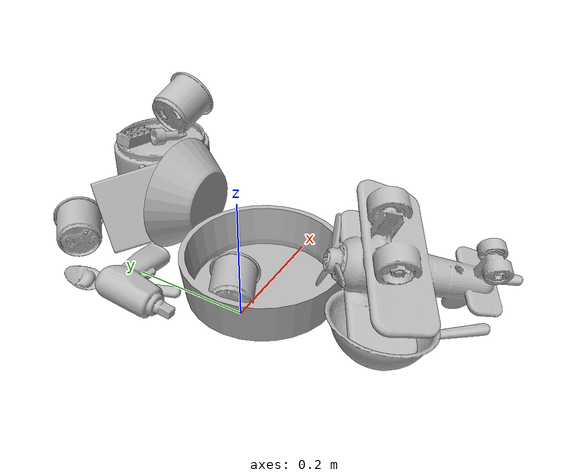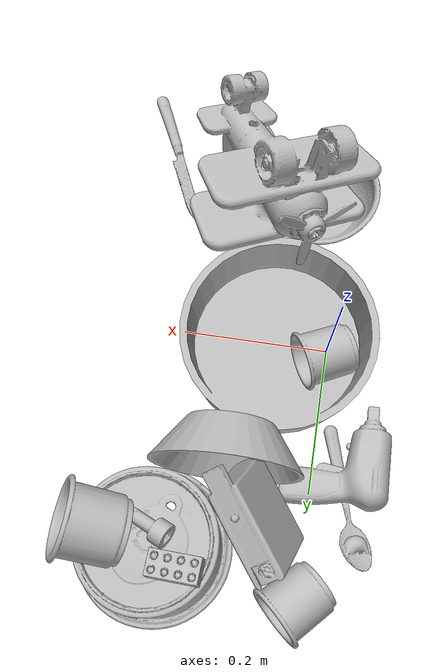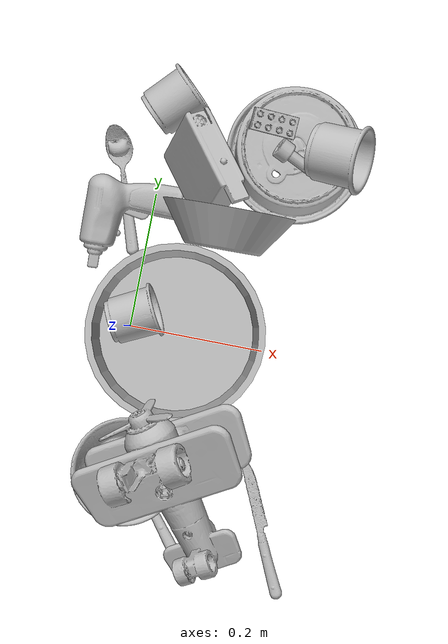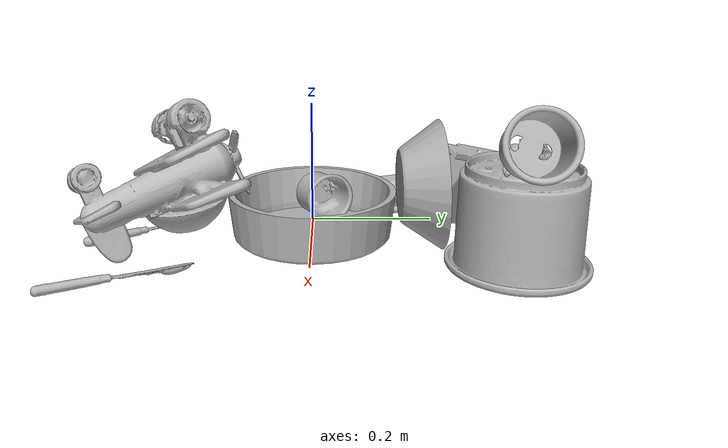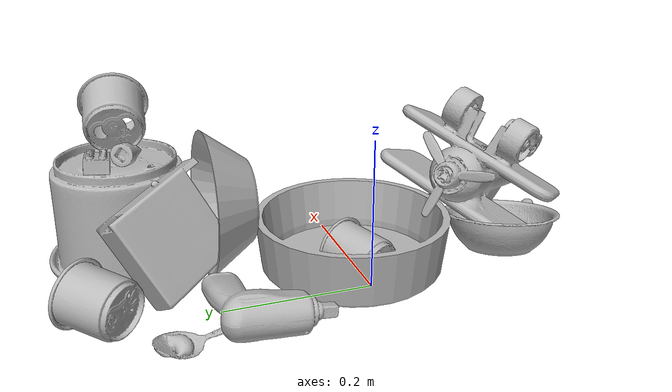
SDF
<sdf version="1.4">
  <world name="default">
    <light name="light1" type="point">
      <pose>0 0 1 0 0 0</pose>
      <diffuse>3 3 3 1</diffuse>
      <specular>3 3 3 1</specular>
    </light>
    <light name="light2" type="point">
      <pose>0 0.5 2 0 0 0</pose>
      <diffuse>1 1 1 1</diffuse>
      <specular>1 1 1 1</specular>
    </light>
    <light name="light3" type="point">
      <pose>0 0.5 2 0 0 0</pose>
      <diffuse>3 3 3 1</diffuse>
      <specular>3 3 3 1</specular>
    </light>
    <scene>
      <ambient>0.7 0.7 0.7</ambient>
    </scene>
    <model name="plate1">
      <link name="link_plate1">
        <collision name="default">
          <geometry>
            <mesh>
              <uri>model://pan_tefal/collision_meshes/collision.obj</uri>
              <scale>1.0 1.0 1.0</scale>
            </mesh>
          </geometry>
          <surface>
            <friction>
              <ode>
                <mu>0.5</mu>
                <mu2>0.5</mu2>
              </ode>
            </friction>
          <contact>
        <ode>
            <max_vel>0</max_vel>
            <min_depth>0.0001</min_depth>
            <kp>1e8</kp>
        </ode>
    </contact></surface>
        </collision>
        <visual name="default">
          <geometry>
            <mesh>
              <uri>model://pan_tefal/visual_meshes/visual.dae</uri>
              <scale>1.0 1.0 1.0</scale>
            </mesh>
          </geometry>
        </visual>
        <inertial>
          <mass>1.2414644956588745</mass>
          <pose>-0.0001800298341549933 3.278589065303095e-05 -0.00851493515074253 0.0008190165640447202 -0.0003301348973125405 -0.33185319573483557</pose>
          <inertia>
            <ixx>0.00856977</ixx>
            <iyy>0.008625018</iyy>
            <izz>0.015775295</izz>
            <ixy>0</ixy>
            <ixz>0</ixz>
            <iyz>0</iyz>
          </inertia>
        </inertial>
      </link>
      <pose>0.0693698301911354 0.0011456385254859924 0.03805014491081238 -5.593968697668288e-06 -3.5262727274742333e-06 1.5217507458046649</pose>
    </model>
    <model name="cup1">
      <link name="link_cup1">
        <collision name="default">
          <geometry>
            <mesh>
              <uri>model://j_cups/collision_meshes/collision.obj</uri>
              <scale>2.0 2.0 2.0</scale>
            </mesh>
          </geometry>
          <surface>
            <friction>
              <ode>
                <mu>0.5</mu>
                <mu2>0.5</mu2>
              </ode>
            </friction>
          <contact>
        <ode>
            <max_vel>0</max_vel>
            <min_depth>0.0001</min_depth>
            <kp>1e8</kp>
        </ode>
    </contact></surface>
        </collision>
        <visual name="default">
          <geometry>
            <mesh>
              <uri>model://j_cups/visual_meshes/visual.dae</uri>
              <scale>2.0 2.0 2.0</scale>
            </mesh>
          </geometry>
        </visual>
        <inertial>
          <mass>0.42814481258392334</mass>
          <pose>0.0012329709716141224 0.0010797895956784487 -0.002695801667869091 0.030303634199985552 0.037580068488308346 0.43868666904956827</pose>
          <inertia>
            <ixx>0.0025146077</ixx>
            <iyy>0.0025407567</iyy>
            <izz>0.0028988216</izz>
            <ixy>0</ixy>
            <ixz>0</ixz>
            <iyz>0</iyz>
          </inertia>
        </inertial>
      </link>
      <pose>0.19186097383499146 0.2963273227214813 0.07599596679210663 -3.1398425942183548 0.006361711697991608 -2.6875063105709143</pose>
    </model>
    <model name="silverware1">
      <link name="link_silverware1">
        <collision name="default">
          <geometry>
            <mesh>
              <uri>model://fork/collision_meshes/collision.obj</uri>
              <scale>1.0 1.0 1.0</scale>
            </mesh>
          </geometry>
          <surface>
            <friction>
              <ode>
                <mu>0.5</mu>
                <mu2>0.5</mu2>
              </ode>
            </friction>
          <contact>
        <ode>
            <max_vel>0</max_vel>
            <min_depth>0.0001</min_depth>
            <kp>1e8</kp>
        </ode>
    </contact></surface>
        </collision>
        <visual name="default">
          <geometry>
            <mesh>
              <uri>model://fork/visual_meshes/visual.dae</uri>
              <scale>1.0 1.0 1.0</scale>
            </mesh>
          </geometry>
        </visual>
        <inertial>
          <mass>0.013809523545205593</mass>
          <pose>-0.029570044949650764 0.0004658822435885668 0.00032188615296036005 -0.013551743215227608 -0.010977837587661193 0.014453899243146438</pose>
          <inertia>
            <ixx>4.84102e-07</ixx>
            <iyy>3.6052697e-05</iyy>
            <izz>3.6269223e-05</izz>
            <ixy>0</ixy>
            <ixz>0</ixz>
            <iyz>0</iyz>
          </inertia>
        </inertial>
      </link>
      <pose>0.08487081527709961 -0.26270145177841187 0.012750478461384773 -3.0750127442482578 0.016400949609195015 2.233572908003052</pose>
    </model>
    <model name="silverware2">
      <link name="link_silverware2">
        <collision name="default">
          <geometry>
            <mesh>
              <uri>model://knife/collision_meshes/collision.obj</uri>
              <scale>1.0 1.0 1.0</scale>
            </mesh>
          </geometry>
          <surface>
            <friction>
              <ode>
                <mu>0.5</mu>
                <mu2>0.5</mu2>
              </ode>
            </friction>
          <contact>
        <ode>
            <max_vel>0</max_vel>
            <min_depth>0.0001</min_depth>
            <kp>1e8</kp>
        </ode>
    </contact></surface>
        </collision>
        <visual name="default">
          <geometry>
            <mesh>
              <uri>model://knife/visual_meshes/visual.dae</uri>
              <scale>1.0 1.0 1.0</scale>
            </mesh>
          </geometry>
        </visual>
        <inertial>
          <mass>0.021972408518195152</mass>
          <pose>-0.023785250261425972 0.0015275123296305537 5.0620161346159875e-05 0.07305788583029697 0.01724841890740089 -0.007409824444555058</pose>
          <inertia>
            <ixx>6.2366604e-07</ixx>
            <iyy>8.441444e-05</iyy>
            <izz>8.46153e-05</izz>
            <ixy>0</ixy>
            <ixz>0</ixz>
            <iyz>0</iyz>
          </inertia>
        </inertial>
      </link>
      <pose>0.2507677674293518 -0.26027047634124756 0.008136836811900139 -0.28173473454825765 -0.008871892354508006 1.9916757057350705</pose>
    </model>
    <model name="silverware3">
      <link name="link_silverware3">
        <collision name="default">
          <geometry>
            <mesh>
              <uri>model://spoon/collision_meshes/collision.obj</uri>
              <scale>1.0 1.0 1.0</scale>
            </mesh>
          </geometry>
          <surface>
            <friction>
              <ode>
                <mu>0.5</mu>
                <mu2>0.5</mu2>
              </ode>
            </friction>
          <contact>
        <ode>
            <max_vel>0</max_vel>
            <min_depth>0.0001</min_depth>
            <kp>1e8</kp>
        </ode>
    </contact></surface>
        </collision>
        <visual name="default">
          <geometry>
            <mesh>
              <uri>model://spoon/visual_meshes/visual.dae</uri>
              <scale>1.0 1.0 1.0</scale>
            </mesh>
          </geometry>
        </visual>
        <inertial>
          <mass>0.026694269850850105</mass>
          <pose>-0.005526325199753046 -0.0016034168656915426 -0.0007271653739735484 0.035216710718480135 -0.03906584501417282 0.00615060951780049</pose>
          <inertia>
            <ixx>1.484779e-06</ixx>
            <iyy>0.000101570804</iyy>
            <izz>0.000102303035</izz>
            <ixy>0</ixy>
            <ixz>0</ixz>
            <iyz>0</iyz>
          </inertia>
        </inertial>
      </link>
      <pose>-0.049184802919626236 0.19751830399036407 0.008538704365491867 -0.33035893637397823 0.001699620041079543 1.8856585760558247</pose>
    </model>
    <model name="cup3">
      <link name="link_cup3">
        <collision name="default">
          <geometry>
            <mesh>
              <uri>model://f_cups/collision_meshes/collision.obj</uri>
              <scale>1.0 1.0 1.0</scale>
            </mesh>
          </geometry>
          <surface>
            <friction>
              <ode>
                <mu>0.5</mu>
                <mu2>0.5</mu2>
              </ode>
            </friction>
          <contact>
        <ode>
            <max_vel>0</max_vel>
            <min_depth>0.0001</min_depth>
            <kp>1e8</kp>
        </ode>
    </contact></surface>
        </collision>
        <visual name="default">
          <geometry>
            <mesh>
              <uri>model://f_cups/visual_meshes/visual.dae</uri>
              <scale>1.0 1.0 1.0</scale>
            </mesh>
          </geometry>
        </visual>
        <inertial>
          <mass>0.09255705773830414</mass>
          <pose>-0.0031714672222733498 -0.0006240062648430467 -0.0036555363330990076 0.7862294428046025 -0.26079256257201844 -0.18237393521905715</pose>
          <inertia>
            <ixx>8.700612e-05</ixx>
            <iyy>9.127041e-05</iyy>
            <izz>9.501506e-05</izz>
            <ixy>0</ixy>
            <ixz>0</ixz>
            <iyz>0</iyz>
          </inertia>
        </inertial>
      </link>
      <pose>0.0030575029086321592 0.015790263190865517 0.04479440301656723 -1.2439511593064863 -1.2816117412736807 -1.4198256416963946</pose>
    </model>
    <model name="cup4">
      <link name="link_cup4">
        <collision name="default">
          <geometry>
            <mesh>
              <uri>model://g_cups/collision_meshes/collision.obj</uri>
              <scale>1.0 1.0 1.0</scale>
            </mesh>
          </geometry>
          <surface>
            <friction>
              <ode>
                <mu>0.5</mu>
                <mu2>0.5</mu2>
              </ode>
            </friction>
          <contact>
        <ode>
            <max_vel>0</max_vel>
            <min_depth>0.0001</min_depth>
            <kp>1e8</kp>
        </ode>
    </contact></surface>
        </collision>
        <visual name="default">
          <geometry>
            <mesh>
              <uri>model://g_cups/visual_meshes/visual.dae</uri>
              <scale>1.0 1.0 1.0</scale>
            </mesh>
          </geometry>
        </visual>
        <inertial>
          <mass>0.09045539051294327</mass>
          <pose>-0.0007946272380650043 -4.206356970826164e-05 -0.0021329366136342287 -0.21382427470227655 -0.31410603394020525 0.31120189460551634</pose>
          <inertia>
            <ixx>0.000105581705</ixx>
            <iyy>0.000105222556</iyy>
            <izz>0.000109364446</izz>
            <ixy>0</ixy>
            <ixz>0</ixz>
            <iyz>0</iyz>
          </inertia>
        </inertial>
      </link>
      <pose>0.00151030661072582 0.33718258142471313 0.03984883427619934 -1.2842511758380029 1.2251104561848862 -0.5103146276930987</pose>
    </model>
    <model name="cup5">
      <link name="link_cup5">
        <collision name="default">
          <geometry>
            <mesh>
              <uri>model://i_cups/collision_meshes/collision.obj</uri>
              <scale>1.0 1.0 1.0</scale>
            </mesh>
          </geometry>
          <surface>
            <friction>
              <ode>
                <mu>0.5</mu>
                <mu2>0.5</mu2>
              </ode>
            </friction>
          <contact>
        <ode>
            <max_vel>0</max_vel>
            <min_depth>0.0001</min_depth>
            <kp>1e8</kp>
        </ode>
    </contact></surface>
        </collision>
        <visual name="default">
          <geometry>
            <mesh>
              <uri>model://i_cups/visual_meshes/visual.dae</uri>
              <scale>1.0 1.0 1.0</scale>
            </mesh>
          </geometry>
        </visual>
        <inertial>
          <mass>0.0815454050898552</mass>
          <pose>0.0001123997790273279 0.00016797320859041065 -0.0008579009445384145 -0.02898318353055437 -0.03987301779891007 -0.3459082462056558</pose>
          <inertia>
            <ixx>0.0001129008</ixx>
            <iyy>0.000113895556</iyy>
            <izz>0.00012618494</izz>
            <ixy>0</ixy>
            <ixz>0</ixz>
            <iyz>0</iyz>
          </inertia>
        </inertial>
      </link>
      <pose>0.24881570041179657 0.29085561633110046 0.19055591523647308 1.1748588139363614 0.5704180992233021 1.2819248749352927</pose>
    </model>
    <model name="bowl1">
      <link name="link_bowl1">
        <collision name="default">
          <geometry>
            <mesh>
              <uri>model://bowl/collision_meshes/collision.obj</uri>
              <scale>1.0 1.0 1.0</scale>
            </mesh>
          </geometry>
          <surface>
            <friction>
              <ode>
                <mu>0.5</mu>
                <mu2>0.5</mu2>
              </ode>
            </friction>
          <contact>
        <ode>
            <max_vel>0</max_vel>
            <min_depth>0.0001</min_depth>
            <kp>1e8</kp>
        </ode>
    </contact></surface>
        </collision>
        <visual name="default">
          <geometry>
            <mesh>
              <uri>model://bowl/visual_meshes/visual.dae</uri>
              <scale>1.0 1.0 1.0</scale>
            </mesh>
          </geometry>
        </visual>
        <inertial>
          <mass>0.1349102407693863</mass>
          <pose>0.00020445192058105022 -0.0010302069131284952 -0.0008042648551054299 -0.01576408127006171 0.01454679335072616 0.7140405111038781</pose>
          <inertia>
            <ixx>0.00030989948</ixx>
            <iyy>0.00030297515</iyy>
            <izz>0.0005213576</izz>
            <ixy>0</ixy>
            <ixz>0</ixz>
            <iyz>0</iyz>
          </inertia>
        </inertial>
      </link>
      <pose>0.03167067840695381 -0.21023821830749512 0.03573429211974144 0.1782266030454713 -0.09014404787414874 1.7335809885899836</pose>
    </model>
    <model name="bowl2">
      <link name="link_bowl2">
        <collision name="default">
          <geometry>
            <mesh>
              <uri>model://bowl_a/collision_meshes/collision.obj</uri>
              <scale>1.0 1.0 1.0</scale>
            </mesh>
          </geometry>
          <surface>
            <friction>
              <ode>
                <mu>0.5</mu>
                <mu2>0.5</mu2>
              </ode>
            </friction>
          <contact>
        <ode>
            <max_vel>0</max_vel>
            <min_depth>0.0001</min_depth>
            <kp>1e8</kp>
        </ode>
    </contact></surface>
        </collision>
        <visual name="default">
          <geometry>
            <mesh>
              <uri>model://bowl_a/visual_meshes/visual.dae</uri>
              <scale>1.0 1.0 1.0</scale>
            </mesh>
          </geometry>
        </visual>
        <inertial>
          <mass>0.4816342294216156</mass>
          <pose>0.000278677063761279 4.73155923828017e-05 -0.0013765296898782253 -0.0009805427744981278 -0.0010938171301827632 -0.19123023792191385</pose>
          <inertia>
            <ixx>0.0013712347</ixx>
            <iyy>0.0013796532</iyy>
            <izz>0.0024387941</izz>
            <ixy>0</ixy>
            <ixz>0</ixz>
            <iyz>0</iyz>
          </inertia>
        </inertial>
      </link>
      <pose>0.11299862712621689 0.16428259015083313 0.09730996191501617 1.5199726628429506 -0.8232256833576198 -3.0889130516193197</pose>
    </model>
    <model name="toy1">
      <link name="link_toy1">
        <collision name="default">
          <geometry>
            <mesh>
              <uri>model://a_toy_airplane/collision_meshes/collision.obj</uri>
              <scale>1.0 1.0 1.0</scale>
            </mesh>
          </geometry>
          <surface>
            <friction>
              <ode>
                <mu>0.5</mu>
                <mu2>0.5</mu2>
              </ode>
            </friction>
          <contact>
        <ode>
            <max_vel>0</max_vel>
            <min_depth>0.0001</min_depth>
            <kp>1e8</kp>
        </ode>
    </contact></surface>
        </collision>
        <visual name="default">
          <geometry>
            <mesh>
              <uri>model://a_toy_airplane/visual_meshes/visual.dae</uri>
              <scale>1.0 1.0 1.0</scale>
            </mesh>
          </geometry>
        </visual>
        <inertial>
          <mass>1.6936675310134888</mass>
          <pose>0.025165095925331116 -0.0037073225248605013 -0.0011962444987148046 -0.01201699252327453 -0.146634996228158 0.004149091382990828</pose>
          <inertia>
            <ixx>0.0061505185</ixx>
            <iyy>0.008962553</iyy>
            <izz>0.010494047</izz>
            <ixy>0</ixy>
            <ixz>0</ixz>
            <iyz>0</iyz>
          </inertia>
        </inertial>
      </link>
      <pose>0.11730431765317917 -0.22326499223709106 0.09652866423130035 2.7740459203672643 -0.42604402964215093 2.2585438675193994</pose>
    </model>
    <model name="toy2">
      <link name="link_toy2">
        <collision name="default">
          <geometry>
            <mesh>
              <uri>model://c_lego_duplo/collision_meshes/collision.obj</uri>
              <scale>1.0 1.0 1.0</scale>
            </mesh>
          </geometry>
          <surface>
            <friction>
              <ode>
                <mu>0.5</mu>
                <mu2>0.5</mu2>
              </ode>
            </friction>
          <contact>
        <ode>
            <max_vel>0</max_vel>
            <min_depth>0.0001</min_depth>
            <kp>1e8</kp>
        </ode>
    </contact></surface>
        </collision>
        <visual name="default">
          <geometry>
            <mesh>
              <uri>model://c_lego_duplo/visual_meshes/visual.dae</uri>
              <scale>1.0 1.0 1.0</scale>
            </mesh>
          </geometry>
        </visual>
        <inertial>
          <mass>0.01636073924601078</mass>
          <pose>0.000316459103487432 0.0001946457487065345 0.001045315177179873 -0.01152079658800189 0.005900071110555828 0.03110036538654021</pose>
          <inertia>
            <ixx>6.295917e-06</ixx>
            <iyy>2.0111436e-06</iyy>
            <izz>7.357428e-06</izz>
            <ixy>0</ixy>
            <ixz>0</ixz>
            <iyz>0</iyz>
          </inertia>
        </inertial>
      </link>
      <pose>0.15208445489406586 0.3212277889251709 0.1593262404203415 0.16317995758222034 -0.07785339995869439 1.4927309821496233</pose>
    </model>
    <model name="toy3">
      <link name="link_toy3">
        <collision name="default">
          <geometry>
            <mesh>
              <uri>model://nine_hole_peg_test/collision_meshes/collision.obj</uri>
              <scale>1.0 1.0 1.0</scale>
            </mesh>
          </geometry>
          <surface>
            <friction>
              <ode>
                <mu>0.5</mu>
                <mu2>0.5</mu2>
              </ode>
            </friction>
          <contact>
        <ode>
            <max_vel>0</max_vel>
            <min_depth>0.0001</min_depth>
            <kp>1e8</kp>
        </ode>
    </contact></surface>
        </collision>
        <visual name="default">
          <geometry>
            <mesh>
              <uri>model://nine_hole_peg_test/visual_meshes/visual.dae</uri>
              <scale>1.0 1.0 1.0</scale>
            </mesh>
          </geometry>
        </visual>
        <inertial>
          <mass>0.9464474320411682</mass>
          <pose>-0.004617386497557163 -0.009647613391280174 2.646068787726108e-05 -0.0014666793204268175 0.0007194166079670136 -0.6342420609245715</pose>
          <inertia>
            <ixx>0.0014799263</ixx>
            <iyy>0.0013817915</iyy>
            <izz>0.002593267</izz>
            <ixy>0</ixy>
            <ixz>0</ixz>
            <iyz>0</iyz>
          </inertia>
        </inertial>
      </link>
      <pose>0.07064180076122284 0.24163836240768433 0.08686599135398865 2.5718850485597966 -1.045481283096571 1.1556640061990175</pose>
    </model>
    <model name="toy4">
      <link name="link_toy4">
        <collision name="default">
          <geometry>
            <mesh>
              <uri>model://d_toy_airplane/collision_meshes/collision.obj</uri>
              <scale>1.0 1.0 1.0</scale>
            </mesh>
          </geometry>
          <surface>
            <friction>
              <ode>
                <mu>0.5</mu>
                <mu2>0.5</mu2>
              </ode>
            </friction>
          <contact>
        <ode>
            <max_vel>0</max_vel>
            <min_depth>0.0001</min_depth>
            <kp>1e8</kp>
        </ode>
    </contact></surface>
        </collision>
        <visual name="default">
          <geometry>
            <mesh>
              <uri>model://d_toy_airplane/visual_meshes/visual.dae</uri>
              <scale>1.0 1.0 1.0</scale>
            </mesh>
          </geometry>
        </visual>
        <inertial>
          <mass>0.021776849403977394</mass>
          <pose>9.410295024281368e-05 -5.809321373817511e-05 -0.011728097684681416 0.0002661671660100631 0.004679022103859929 0.519291232465637</pose>
          <inertia>
            <ixx>6.5282748e-06</ixx>
            <iyy>6.5331997e-06</iyy>
            <izz>1.9709291e-06</izz>
            <ixy>0</ixy>
            <ixz>0</ixz>
            <iyz>0</iyz>
          </inertia>
        </inertial>
      </link>
      <pose>0.193926602602005 0.2767326831817627 0.1532648205757141 -1.8579913651956343 -0.738764101206534 -1.798090271411046</pose>
    </model>
    <model name="toy5">
      <link name="link_toy5">
        <collision name="default">
          <geometry>
            <mesh>
              <uri>model://b_toy_airplane/collision_meshes/collision.obj</uri>
              <scale>1.0 1.0 1.0</scale>
            </mesh>
          </geometry>
          <surface>
            <friction>
              <ode>
                <mu>0.5</mu>
                <mu2>0.5</mu2>
              </ode>
            </friction>
          <contact>
        <ode>
            <max_vel>0</max_vel>
            <min_depth>0.0001</min_depth>
            <kp>1e8</kp>
        </ode>
    </contact></surface>
        </collision>
        <visual name="default">
          <geometry>
            <mesh>
              <uri>model://b_toy_airplane/visual_meshes/visual.dae</uri>
              <scale>1.0 1.0 1.0</scale>
            </mesh>
          </geometry>
        </visual>
        <inertial>
          <mass>0.25237053632736206</mass>
          <pose>0.00508136348798871 0.004015584476292133 0.00954306498169899 -0.04001808288480986 -0.0402218063825515 -0.5601503558886168</pose>
          <inertia>
            <ixx>0.00046853055</ixx>
            <iyy>0.00018727628</iyy>
            <izz>0.0005828988</izz>
            <ixy>0</ixy>
            <ixz>0</ixz>
            <iyz>0</iyz>
          </inertia>
        </inertial>
      </link>
      <pose>-0.044262517243623734 0.17033545672893524 0.03737128525972366 3.046567849247762 0.08919541113768234 -1.5546117380851319</pose>
    </model>
  <physics type="ode">
      <max_contacts>50</max_contacts>
      <ode>
        <solver>
          <type>quick</type>
          <iters>75</iters>
        </solver>
        <constraints>
          <contact_max_correcting_vel>0</contact_max_correcting_vel>
          <contact_surface_layer>0</contact_surface_layer>
        </constraints>
      </ode>
    </physics></world>
</sdf>
